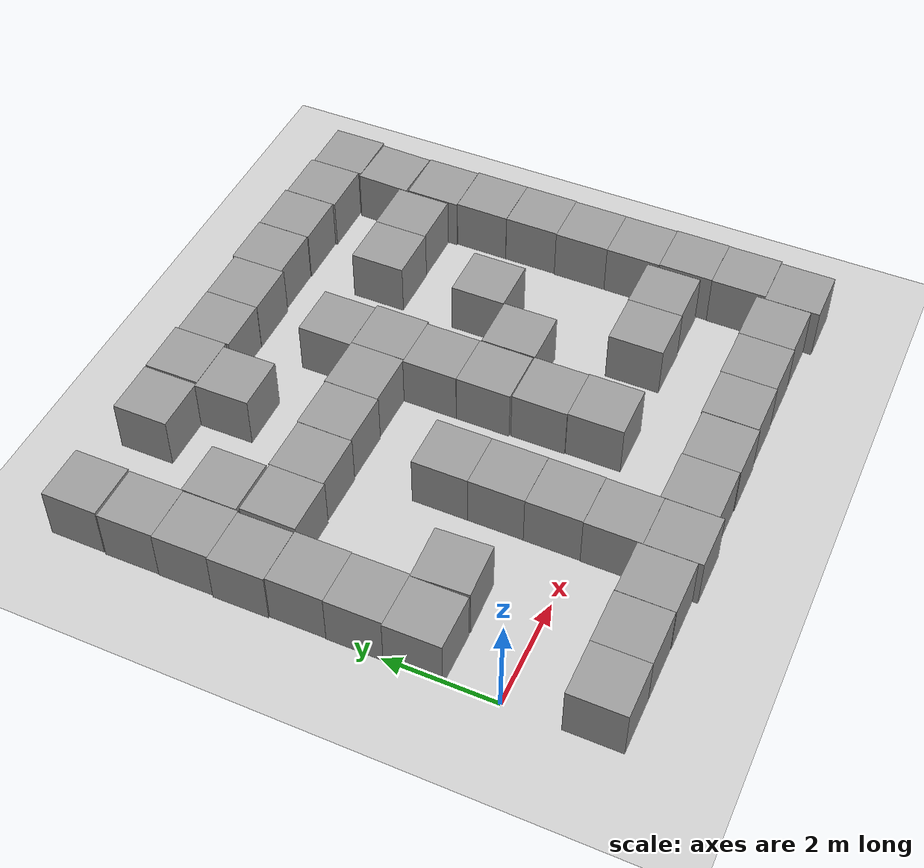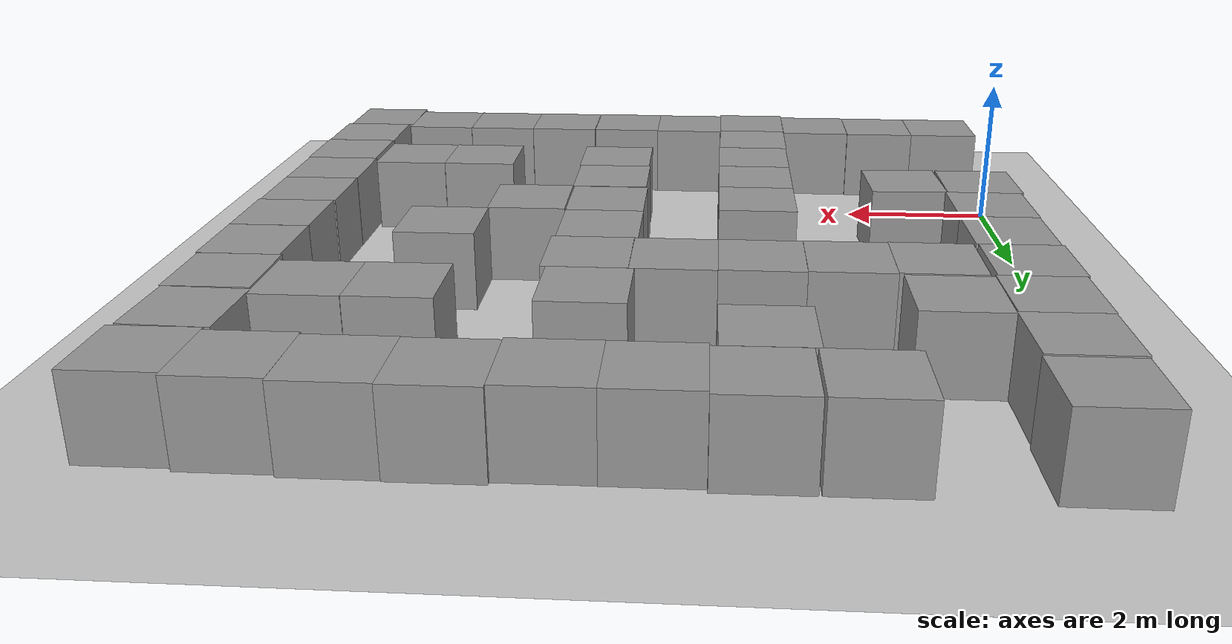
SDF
<sdf version="1.7">
 <world name="default">
  <light name="sun" type="directional">
   <pose>0 0 10 0 -0 0</pose>
   <diffuse>0.8 0.8 0.8 1</diffuse>
   <specular>0.2 0.2 0.2 1</specular>
   <attenuation>
    <range>1000</range>
    <constant>0.9</constant>
    <linear>0.01</linear>
    <quadratic>0.001</quadratic>
   </attenuation>
   <direction>-0.5 0.1 -0.9</direction>
   <spot><inner_angle>0</inner_angle><outer_angle>0</outer_angle><falloff>0</falloff></spot>
  </light>
  <model name="ground_plane">
   <static>1</static>
   <link name="link">
    <collision name="collision">
     <geometry><plane><normal>0 0 1</normal><size>100 100</size></plane></geometry>
     <surface><friction><ode><mu>100</mu><mu2>50</mu2></ode></friction></surface>
    </collision>
    <visual name="visual">
     <cast_shadows>0</cast_shadows>
     <geometry><plane><normal>0 0 1</normal><size>100 100</size></plane></geometry>
     <material>
      <script><uri>file://media/materials/scripts/gazebo.material</uri><name>Gazebo/Grey</name></script>
     </material>
    </visual>
   </link>
  </model>
  <gravity>0 0 -9.8</gravity>
  <magnetic_field>6e-06 2.3e-05 -4.2e-05</magnetic_field>
  <atmosphere type="adiabatic"/>
  <physics type="ode">
   <max_step_size>0.001</max_step_size>
   <real_time_factor>1</real_time_factor>
   <real_time_update_rate>1000</real_time_update_rate>
  </physics>
  <scene><ambient>0.4 0.4 0.4 1</ambient><background>0.7 0.7 0.7 1</background><shadows>1</shadows></scene>
  <audio><device>default</device></audio>
  <spherical_coordinates>
   <surface_model>EARTH_WGS84</surface_model>
   <latitude_deg>0</latitude_deg>
   <longitude_deg>0</longitude_deg>
   <elevation>0</elevation>
   <heading_deg>0</heading_deg>
  </spherical_coordinates>
  <model name="unit_box">
   <pose>0.443904 1.44466 0.5 0 -0 0.004043</pose>
   <link name="link">
    <inertial>
     <mass>1</mass>
     <inertia>
      <ixx>0.166667</ixx>
      <ixy>0</ixy>
      <ixz>0</ixz>
      <iyy>0.166667</iyy>
      <iyz>0</iyz>
      <izz>0.166667</izz>
     </inertia>
    </inertial>
    <collision name="collision"><geometry><box><size>1 1 1</size></box></geometry></collision>
    <visual name="visual">
     <geometry><box><size>1 1 1</size></box></geometry>
     <material>
      <script><name>Gazebo/Grey</name><uri>file://media/materials/scripts/gazebo.material</uri></script>
     </material>
    </visual>
   </link>
  </model>
  <model name="unit_box_0">
   <pose>0.474663 -1.49159 0.5 0 0 -0.000313</pose>
   <link name="link">
    <inertial>
     <mass>1</mass>
     <inertia>
      <ixx>0.166667</ixx>
      <ixy>0</ixy>
      <ixz>0</ixz>
      <iyy>0.166667</iyy>
      <iyz>0</iyz>
      <izz>0.166667</izz>
     </inertia>
    </inertial>
    <collision name="collision"><geometry><box><size>1 1 1</size></box></geometry></collision>
    <visual name="visual">
     <geometry><box><size>1 1 1</size></box></geometry>
     <material>
      <script><name>Gazebo/Grey</name><uri>file://media/materials/scripts/gazebo.material</uri></script>
     </material>
    </visual>
   </link>
  </model>
  <model name="unit_box_1">
   <pose>1.47472 -1.49217 0.5 0 0 -0.00041</pose>
   <link name="link">
    <inertial>
     <mass>1</mass>
     <inertia>
      <ixx>0.166667</ixx>
      <ixy>0</ixy>
      <ixz>0</ixz>
      <iyy>0.166667</iyy>
      <iyz>0</iyz>
      <izz>0.166667</izz>
     </inertia>
    </inertial>
    <collision name="collision"><geometry><box><size>1 1 1</size></box></geometry></collision>
    <visual name="visual">
     <geometry><box><size>1 1 1</size></box></geometry>
     <material>
      <script><name>Gazebo/Grey</name><uri>file://media/materials/scripts/gazebo.material</uri></script>
     </material>
    </visual>
   </link>
  </model>
  <model name="unit_box_2">
   <pose>2.47643 -1.50173 0.5 0 -0 -0.003888</pose>
   <link name="link">
    <inertial>
     <mass>1</mass>
     <inertia>
      <ixx>0.166667</ixx>
      <ixy>0</ixy>
      <ixz>0</ixz>
      <iyy>0.166667</iyy>
      <iyz>0</iyz>
      <izz>0.166667</izz>
     </inertia>
    </inertial>
    <collision name="collision"><geometry><box><size>1 1 1</size></box></geometry></collision>
    <visual name="visual">
     <geometry><box><size>1 1 1</size></box></geometry>
     <material>
      <script><name>Gazebo/Grey</name><uri>file://media/materials/scripts/gazebo.material</uri></script>
     </material>
    </visual>
   </link>
  </model>
  <model name="unit_box_3">
   <pose>3.47791 -1.59664 0.5 0 -0 -0.004404</pose>
   <link name="link">
    <inertial>
     <mass>1</mass>
     <inertia>
      <ixx>0.166667</ixx>
      <ixy>0</ixy>
      <ixz>0</ixz>
      <iyy>0.166667</iyy>
      <iyz>0</iyz>
      <izz>0.166667</izz>
     </inertia>
    </inertial>
    <collision name="collision"><geometry><box><size>1 1 1</size></box></geometry></collision>
    <visual name="visual">
     <geometry><box><size>1 1 1</size></box></geometry>
     <material>
      <script><name>Gazebo/Grey</name><uri>file://media/materials/scripts/gazebo.material</uri></script>
     </material>
    </visual>
   </link>
  </model>
  <model name="unit_box_4">
   <pose>4.47917 -1.52453 0.5 -0 -0 -0.006245</pose>
   <link name="link">
    <inertial>
     <mass>1</mass>
     <inertia>
      <ixx>0.166667</ixx>
      <ixy>0</ixy>
      <ixz>0</ixz>
      <iyy>0.166667</iyy>
      <iyz>0</iyz>
      <izz>0.166667</izz>
     </inertia>
    </inertial>
    <collision name="collision"><geometry><box><size>1 1 1</size></box></geometry></collision>
    <visual name="visual">
     <geometry><box><size>1 1 1</size></box></geometry>
     <material>
      <script><name>Gazebo/Grey</name><uri>file://media/materials/scripts/gazebo.material</uri></script>
     </material>
    </visual>
   </link>
  </model>
  <model name="unit_box_5">
   <pose>5.4791 -1.54081 0.5 0 0 -0.00624</pose>
   <link name="link">
    <inertial>
     <mass>1</mass>
     <inertia>
      <ixx>0.166667</ixx>
      <ixy>0</ixy>
      <ixz>0</ixz>
      <iyy>0.166667</iyy>
      <iyz>0</iyz>
      <izz>0.166667</izz>
     </inertia>
    </inertial>
    <collision name="collision"><geometry><box><size>1 1 1</size></box></geometry></collision>
    <visual name="visual">
     <geometry><box><size>1 1 1</size></box></geometry>
     <material>
      <script><name>Gazebo/Grey</name><uri>file://media/materials/scripts/gazebo.material</uri></script>
     </material>
    </visual>
   </link>
  </model>
  <model name="unit_box_6">
   <pose>6.48631 -1.52964 0.5 0 0 -0.008045</pose>
   <link name="link">
    <inertial>
     <mass>1</mass>
     <inertia>
      <ixx>0.166667</ixx>
      <ixy>0</ixy>
      <ixz>0</ixz>
      <iyy>0.166667</iyy>
      <iyz>0</iyz>
      <izz>0.166667</izz>
     </inertia>
    </inertial>
    <collision name="collision"><geometry><box><size>1 1 1</size></box></geometry></collision>
    <visual name="visual">
     <geometry><box><size>1 1 1</size></box></geometry>
     <material>
      <script><name>Gazebo/Grey</name><uri>file://media/materials/scripts/gazebo.material</uri></script>
     </material>
    </visual>
   </link>
  </model>
  <model name="unit_box_7">
   <pose>7.48636 -1.52834 0.5 0 -0 -0.008045</pose>
   <link name="link">
    <inertial>
     <mass>1</mass>
     <inertia>
      <ixx>0.166667</ixx>
      <ixy>0</ixy>
      <ixz>0</ixz>
      <iyy>0.166667</iyy>
      <iyz>0</iyz>
      <izz>0.166667</izz>
     </inertia>
    </inertial>
    <collision name="collision"><geometry><box><size>1 1 1</size></box></geometry></collision>
    <visual name="visual">
     <geometry><box><size>1 1 1</size></box></geometry>
     <material>
      <script><name>Gazebo/Grey</name><uri>file://media/materials/scripts/gazebo.material</uri></script>
     </material>
    </visual>
   </link>
  </model>
  <model name="unit_box_8">
   <pose>8.48644 -1.52701 0.5 0 -0 -0.008068</pose>
   <link name="link">
    <inertial>
     <mass>1</mass>
     <inertia>
      <ixx>0.166667</ixx>
      <ixy>0</ixy>
      <ixz>0</ixz>
      <iyy>0.166667</iyy>
      <iyz>0</iyz>
      <izz>0.166667</izz>
     </inertia>
    </inertial>
    <collision name="collision"><geometry><box><size>1 1 1</size></box></geometry></collision>
    <visual name="visual">
     <geometry><box><size>1 1 1</size></box></geometry>
     <material>
      <script><name>Gazebo/Grey</name><uri>file://media/materials/scripts/gazebo.material</uri></script>
     </material>
    </visual>
   </link>
  </model>
  <model name="unit_box_9">
   <pose>9.48855 -1.68285 0.5 0 0 -0.001393</pose>
   <link name="link">
    <inertial>
     <mass>1</mass>
     <inertia>
      <ixx>0.166667</ixx>
      <ixy>0</ixy>
      <ixz>0</ixz>
      <iyy>0.166667</iyy>
      <iyz>0</iyz>
      <izz>0.166667</izz>
     </inertia>
    </inertial>
    <collision name="collision"><geometry><box><size>1 1 1</size></box></geometry></collision>
    <visual name="visual">
     <geometry><box><size>1 1 1</size></box></geometry>
     <material>
      <script><name>Gazebo/Grey</name><uri>file://media/materials/scripts/gazebo.material</uri></script>
     </material>
    </visual>
   </link>
  </model>
  <model name="unit_box_10">
   <pose>1.46379 1.4656 0.5 0 -0 0.039116</pose>
   <link name="link">
    <inertial>
     <mass>1</mass>
     <inertia>
      <ixx>0.166667</ixx>
      <ixy>0</ixy>
      <ixz>0</ixz>
      <iyy>0.166667</iyy>
      <iyz>0</iyz>
      <izz>0.166667</izz>
     </inertia>
    </inertial>
    <collision name="collision"><geometry><box><size>1 1 1</size></box></geometry></collision>
    <visual name="visual">
     <geometry><box><size>1 1 1</size></box></geometry>
     <material>
      <script><name>Gazebo/Grey</name><uri>file://media/materials/scripts/gazebo.material</uri></script>
     </material>
    </visual>
   </link>
  </model>
  <model name="unit_box_11">
   <pose>3.48384 -0.596114 0.5 0 -0 -0.004137</pose>
   <link name="link">
    <inertial>
     <mass>1</mass>
     <inertia>
      <ixx>0.166667</ixx>
      <ixy>0</ixy>
      <ixz>0</ixz>
      <iyy>0.166667</iyy>
      <iyz>0</iyz>
      <izz>0.166667</izz>
     </inertia>
    </inertial>
    <collision name="collision"><geometry><box><size>1 1 1</size></box></geometry></collision>
    <visual name="visual">
     <geometry><box><size>1 1 1</size></box></geometry>
     <material>
      <script><name>Gazebo/Grey</name><uri>file://media/materials/scripts/gazebo.material</uri></script>
     </material>
    </visual>
   </link>
  </model>
  <model name="unit_box_12">
   <pose>9.54129 -0.681834 0.5 0 -0 0.000345</pose>
   <link name="link">
    <inertial>
     <mass>1</mass>
     <inertia>
      <ixx>0.166667</ixx>
      <ixy>0</ixy>
      <ixz>0</ixz>
      <iyy>0.166667</iyy>
      <iyz>0</iyz>
      <izz>0.166667</izz>
     </inertia>
    </inertial>
    <collision name="collision"><geometry><box><size>1 1 1</size></box></geometry></collision>
    <visual name="visual">
     <geometry><box><size>1 1 1</size></box></geometry>
     <material>
      <script><name>Gazebo/Grey</name><uri>file://media/materials/scripts/gazebo.material</uri></script>
     </material>
    </visual>
   </link>
  </model>
  <model name="unit_box_13">
   <pose>9.55218 0.31835 0.5 0 -0 0.000614</pose>
   <link name="link">
    <inertial>
     <mass>1</mass>
     <inertia>
      <ixx>0.166667</ixx>
      <ixy>0</ixy>
      <ixz>0</ixz>
      <iyy>0.166667</iyy>
      <iyz>0</iyz>
      <izz>0.166667</izz>
     </inertia>
    </inertial>
    <collision name="collision"><geometry><box><size>1 1 1</size></box></geometry></collision>
    <visual name="visual">
     <geometry><box><size>1 1 1</size></box></geometry>
     <material>
      <script><name>Gazebo/Grey</name><uri>file://media/materials/scripts/gazebo.material</uri></script>
     </material>
    </visual>
   </link>
  </model>
  <model name="unit_box_14">
   <pose>9.53408 1.31835 0.5 0 -0 0.000598</pose>
   <link name="link">
    <inertial>
     <mass>1</mass>
     <inertia>
      <ixx>0.166667</ixx>
      <ixy>0</ixy>
      <ixz>0</ixz>
      <iyy>0.166667</iyy>
      <iyz>0</iyz>
      <izz>0.166667</izz>
     </inertia>
    </inertial>
    <collision name="collision"><geometry><box><size>1 1 1</size></box></geometry></collision>
    <visual name="visual">
     <geometry><box><size>1 1 1</size></box></geometry>
     <material>
      <script><name>Gazebo/Grey</name><uri>file://media/materials/scripts/gazebo.material</uri></script>
     </material>
    </visual>
   </link>
  </model>
  <model name="unit_box_15">
   <pose>9.53714 2.31839 0.5 0 -0 0.000534</pose>
   <link name="link">
    <inertial>
     <mass>1</mass>
     <inertia>
      <ixx>0.166667</ixx>
      <ixy>0</ixy>
      <ixz>0</ixz>
      <iyy>0.166667</iyy>
      <iyz>0</iyz>
      <izz>0.166667</izz>
     </inertia>
    </inertial>
    <collision name="collision"><geometry><box><size>1 1 1</size></box></geometry></collision>
    <visual name="visual">
     <geometry><box><size>1 1 1</size></box></geometry>
     <material>
      <script><name>Gazebo/Grey</name><uri>file://media/materials/scripts/gazebo.material</uri></script>
     </material>
    </visual>
   </link>
  </model>
  <model name="unit_box_16">
   <pose>3.49933 0.404448 0.5 0 0 -0.002953</pose>
   <link name="link">
    <inertial>
     <mass>1</mass>
     <inertia>
      <ixx>0.166667</ixx>
      <ixy>0</ixy>
      <ixz>0</ixz>
      <iyy>0.166667</iyy>
      <iyz>0</iyz>
      <izz>0.166667</izz>
     </inertia>
    </inertial>
    <collision name="collision"><geometry><box><size>1 1 1</size></box></geometry></collision>
    <visual name="visual">
     <geometry><box><size>1 1 1</size></box></geometry>
     <material>
      <script><name>Gazebo/Grey</name><uri>file://media/materials/scripts/gazebo.material</uri></script>
     </material>
    </visual>
   </link>
  </model>
  <model name="unit_box_17">
   <pose>3.50516 1.4052 0.5 0 0 -0.001457</pose>
   <link name="link">
    <inertial>
     <mass>1</mass>
     <inertia>
      <ixx>0.166667</ixx>
      <ixy>0</ixy>
      <ixz>0</ixz>
      <iyy>0.166667</iyy>
      <iyz>0</iyz>
      <izz>0.166667</izz>
     </inertia>
    </inertial>
    <collision name="collision"><geometry><box><size>1 1 1</size></box></geometry></collision>
    <visual name="visual">
     <geometry><box><size>1 1 1</size></box></geometry>
     <material>
      <script><name>Gazebo/Grey</name><uri>file://media/materials/scripts/gazebo.material</uri></script>
     </material>
    </visual>
   </link>
  </model>
  <model name="unit_box_18">
   <pose>0.471958 2.44481 0.5 0 -0 0.00407</pose>
   <link name="link">
    <inertial>
     <mass>1</mass>
     <inertia>
      <ixx>0.166667</ixx>
      <ixy>0</ixy>
      <ixz>0</ixz>
      <iyy>0.166667</iyy>
      <iyz>0</iyz>
      <izz>0.166667</izz>
     </inertia>
    </inertial>
    <collision name="collision"><geometry><box><size>1 1 1</size></box></geometry></collision>
    <visual name="visual">
     <geometry><box><size>1 1 1</size></box></geometry>
     <material>
      <script><name>Gazebo/Grey</name><uri>file://media/materials/scripts/gazebo.material</uri></script>
     </material>
    </visual>
   </link>
  </model>
  <model name="unit_box_19">
   <pose>0.4783 3.44491 0.5 0 -0 0.004124</pose>
   <link name="link">
    <inertial>
     <mass>1</mass>
     <inertia>
      <ixx>0.166667</ixx>
      <ixy>0</ixy>
      <ixz>0</ixz>
      <iyy>0.166667</iyy>
      <iyz>0</iyz>
      <izz>0.166667</izz>
     </inertia>
    </inertial>
    <collision name="collision"><geometry><box><size>1 1 1</size></box></geometry></collision>
    <visual name="visual">
     <geometry><box><size>1 1 1</size></box></geometry>
     <material>
      <script><name>Gazebo/Grey</name><uri>file://media/materials/scripts/gazebo.material</uri></script>
     </material>
    </visual>
   </link>
  </model>
  <model name="unit_box_20">
   <pose>0.447628 4.44644 0.5 0 -0 0.007526</pose>
   <link name="link">
    <inertial>
     <mass>1</mass>
     <inertia>
      <ixx>0.166667</ixx>
      <ixy>0</ixy>
      <ixz>0</ixz>
      <iyy>0.166667</iyy>
      <iyz>0</iyz>
      <izz>0.166667</izz>
     </inertia>
    </inertial>
    <collision name="collision"><geometry><box><size>1 1 1</size></box></geometry></collision>
    <visual name="visual">
     <geometry><box><size>1 1 1</size></box></geometry>
     <material>
      <script><name>Gazebo/Grey</name><uri>file://media/materials/scripts/gazebo.material</uri></script>
     </material>
    </visual>
   </link>
  </model>
  <model name="unit_box_21">
   <pose>0.466162 5.44676 0.5 0 -0 0.007802</pose>
   <link name="link">
    <inertial>
     <mass>1</mass>
     <inertia>
      <ixx>0.166667</ixx>
      <ixy>0</ixy>
      <ixz>0</ixz>
      <iyy>0.166667</iyy>
      <iyz>0</iyz>
      <izz>0.166667</izz>
     </inertia>
    </inertial>
    <collision name="collision"><geometry><box><size>1 1 1</size></box></geometry></collision>
    <visual name="visual">
     <geometry><box><size>1 1 1</size></box></geometry>
     <material>
      <script><name>Gazebo/Grey</name><uri>file://media/materials/scripts/gazebo.material</uri></script>
     </material>
    </visual>
   </link>
  </model>
  <model name="unit_box_22">
   <pose>0.470171 6.447 0.5 0 -0 0.00784</pose>
   <link name="link">
    <inertial>
     <mass>1</mass>
     <inertia>
      <ixx>0.166667</ixx>
      <ixy>0</ixy>
      <ixz>0</ixz>
      <iyy>0.166667</iyy>
      <iyz>0</iyz>
      <izz>0.166667</izz>
     </inertia>
    </inertial>
    <collision name="collision"><geometry><box><size>1 1 1</size></box></geometry></collision>
    <visual name="visual">
     <geometry><box><size>1 1 1</size></box></geometry>
     <material>
      <script><name>Gazebo/Grey</name><uri>file://media/materials/scripts/gazebo.material</uri></script>
     </material>
    </visual>
   </link>
  </model>
  <model name="unit_box_23">
   <pose>9.55411 3.31841 0.5 0 -0 0.000525</pose>
   <link name="link">
    <inertial>
     <mass>1</mass>
     <inertia>
      <ixx>0.166667</ixx>
      <ixy>0</ixy>
      <ixz>0</ixz>
      <iyy>0.166667</iyy>
      <iyz>0</iyz>
      <izz>0.166667</izz>
     </inertia>
    </inertial>
    <collision name="collision"><geometry><box><size>1 1 1</size></box></geometry></collision>
    <visual name="visual">
     <geometry><box><size>1 1 1</size></box></geometry>
     <material>
      <script><name>Gazebo/Grey</name><uri>file://media/materials/scripts/gazebo.material</uri></script>
     </material>
    </visual>
   </link>
  </model>
  <model name="unit_box_24">
   <pose>9.55504 4.32071 0.5 0 0 -0.004068</pose>
   <link name="link">
    <inertial>
     <mass>1</mass>
     <inertia>
      <ixx>0.166667</ixx>
      <ixy>0</ixy>
      <ixz>0</ixz>
      <iyy>0.166667</iyy>
      <iyz>0</iyz>
      <izz>0.166667</izz>
     </inertia>
    </inertial>
    <collision name="collision"><geometry><box><size>1 1 1</size></box></geometry></collision>
    <visual name="visual">
     <geometry><box><size>1 1 1</size></box></geometry>
     <material>
      <script><name>Gazebo/Grey</name><uri>file://media/materials/scripts/gazebo.material</uri></script>
     </material>
    </visual>
   </link>
  </model>
  <model name="unit_box_26">
   <pose>9.52213 6.34288 0.5 0 -0 -0.030222</pose>
   <link name="link">
    <inertial>
     <mass>1</mass>
     <inertia>
      <ixx>0.166667</ixx>
      <ixy>0</ixy>
      <ixz>0</ixz>
      <iyy>0.166667</iyy>
      <iyz>0</iyz>
      <izz>0.166667</izz>
     </inertia>
    </inertial>
    <collision name="collision"><geometry><box><size>1 1 1</size></box></geometry></collision>
    <visual name="visual">
     <geometry><box><size>1 1 1</size></box></geometry>
     <material>
      <script><name>Gazebo/Grey</name><uri>file://media/materials/scripts/gazebo.material</uri></script>
     </material>
    </visual>
   </link>
  </model>
  <model name="unit_box_27">
   <pose>9.59857 7.3581 0.499995 1e-05 0 0.001738</pose>
   <link name="link">
    <inertial>
     <mass>1</mass>
     <inertia>
      <ixx>0.166667</ixx>
      <ixy>0</ixy>
      <ixz>0</ixz>
      <iyy>0.166667</iyy>
      <iyz>0</iyz>
      <izz>0.166667</izz>
     </inertia>
    </inertial>
    <collision name="collision"><geometry><box><size>1 1 1</size></box></geometry></collision>
    <visual name="visual">
     <geometry><box><size>1 1 1</size></box></geometry>
     <material>
      <script><name>Gazebo/Grey</name><uri>file://media/materials/scripts/gazebo.material</uri></script>
     </material>
    </visual>
   </link>
  </model>
  <model name="unit_box_31">
   <pose>6.59731 7.45589 0.5 0 -0 0.003855</pose>
   <link name="link">
    <inertial>
     <mass>1</mass>
     <inertia>
      <ixx>0.166667</ixx>
      <ixy>0</ixy>
      <ixz>0</ixz>
      <iyy>0.166667</iyy>
      <iyz>0</iyz>
      <izz>0.166667</izz>
     </inertia>
    </inertial>
    <collision name="collision"><geometry><box><size>1 1 1</size></box></geometry></collision>
    <visual name="visual">
     <geometry><box><size>1 1 1</size></box></geometry>
     <material>
      <script><name>Gazebo/Grey</name><uri>file://media/materials/scripts/gazebo.material</uri></script>
     </material>
    </visual>
   </link>
  </model>
  <model name="unit_box_32">
   <pose>5.59727 7.40773 0.5 0 -0 0.004315</pose>
   <link name="link">
    <inertial>
     <mass>1</mass>
     <inertia>
      <ixx>0.166667</ixx>
      <ixy>0</ixy>
      <ixz>0</ixz>
      <iyy>0.166667</iyy>
      <iyz>0</iyz>
      <izz>0.166667</izz>
     </inertia>
    </inertial>
    <collision name="collision"><geometry><box><size>1 1 1</size></box></geometry></collision>
    <visual name="visual">
     <geometry><box><size>1 1 1</size></box></geometry>
     <material>
      <script><name>Gazebo/Grey</name><uri>file://media/materials/scripts/gazebo.material</uri></script>
     </material>
    </visual>
   </link>
  </model>
  <model name="unit_box_33">
   <pose>4.59726 7.40817 0.5 0 -0 0.004315</pose>
   <link name="link">
    <inertial>
     <mass>1</mass>
     <inertia>
      <ixx>0.166667</ixx>
      <ixy>0</ixy>
      <ixz>0</ixz>
      <iyy>0.166667</iyy>
      <iyz>0</iyz>
      <izz>0.166667</izz>
     </inertia>
    </inertial>
    <collision name="collision"><geometry><box><size>1 1 1</size></box></geometry></collision>
    <visual name="visual">
     <geometry><box><size>1 1 1</size></box></geometry>
     <material>
      <script><name>Gazebo/Grey</name><uri>file://media/materials/scripts/gazebo.material</uri></script>
     </material>
    </visual>
   </link>
  </model>
  <model name="unit_box_34">
   <pose>3.5962 7.45518 0.5 0 -0 0.005982</pose>
   <link name="link">
    <inertial>
     <mass>1</mass>
     <inertia>
      <ixx>0.166667</ixx>
      <ixy>0</ixy>
      <ixz>0</ixz>
      <iyy>0.166667</iyy>
      <iyz>0</iyz>
      <izz>0.166667</izz>
     </inertia>
    </inertial>
    <collision name="collision"><geometry><box><size>1 1 1</size></box></geometry></collision>
    <visual name="visual">
     <geometry><box><size>1 1 1</size></box></geometry>
     <material>
      <script><name>Gazebo/Grey</name><uri>file://media/materials/scripts/gazebo.material</uri></script>
     </material>
    </visual>
   </link>
  </model>
  <model name="unit_box_38">
   <pose>3.50665 2.40521 0.5 0 0 -0.001452</pose>
   <link name="link">
    <inertial>
     <mass>1</mass>
     <inertia>
      <ixx>0.166667</ixx>
      <ixy>0</ixy>
      <ixz>0</ixz>
      <iyy>0.166667</iyy>
      <iyz>0</iyz>
      <izz>0.166667</izz>
     </inertia>
    </inertial>
    <collision name="collision"><geometry><box><size>1 1 1</size></box></geometry></collision>
    <visual name="visual">
     <geometry><box><size>1 1 1</size></box></geometry>
     <material>
      <script><name>Gazebo/Grey</name><uri>file://media/materials/scripts/gazebo.material</uri></script>
     </material>
    </visual>
   </link>
  </model>
  <model name="unit_box_42">
   <pose>1.51493 4.46199 0.5 0 0 -0.004961</pose>
   <link name="link">
    <inertial>
     <mass>1</mass>
     <inertia>
      <ixx>0.166667</ixx>
      <ixy>0</ixy>
      <ixz>0</ixz>
      <iyy>0.166667</iyy>
      <iyz>0</iyz>
      <izz>0.166667</izz>
     </inertia>
    </inertial>
    <collision name="collision"><geometry><box><size>1 1 1</size></box></geometry></collision>
    <visual name="visual">
     <geometry><box><size>1 1 1</size></box></geometry>
     <material>
      <script><name>Gazebo/Grey</name><uri>file://media/materials/scripts/gazebo.material</uri></script>
     </material>
    </visual>
   </link>
  </model>
  <model name="unit_box_43">
   <pose>2.51523 4.47914 0.5 0 0 -0.005021</pose>
   <link name="link">
    <inertial>
     <mass>1</mass>
     <inertia>
      <ixx>0.166667</ixx>
      <ixy>0</ixy>
      <ixz>0</ixz>
      <iyy>0.166667</iyy>
      <iyz>0</iyz>
      <izz>0.166667</izz>
     </inertia>
    </inertial>
    <collision name="collision"><geometry><box><size>1 1 1</size></box></geometry></collision>
    <visual name="visual">
     <geometry><box><size>1 1 1</size></box></geometry>
     <material>
      <script><name>Gazebo/Grey</name><uri>file://media/materials/scripts/gazebo.material</uri></script>
     </material>
    </visual>
   </link>
  </model>
  <model name="unit_box_44">
   <pose>3.51656 4.49288 0.5 -0 -0 -0.006978</pose>
   <link name="link">
    <inertial>
     <mass>1</mass>
     <inertia>
      <ixx>0.166667</ixx>
      <ixy>0</ixy>
      <ixz>0</ixz>
      <iyy>0.166667</iyy>
      <iyz>0</iyz>
      <izz>0.166667</izz>
     </inertia>
    </inertial>
    <collision name="collision"><geometry><box><size>1 1 1</size></box></geometry></collision>
    <visual name="visual">
     <geometry><box><size>1 1 1</size></box></geometry>
     <material>
      <script><name>Gazebo/Grey</name><uri>file://media/materials/scripts/gazebo.material</uri></script>
     </material>
    </visual>
   </link>
  </model>
  <model name="unit_box_45">
   <pose>4.51696 4.50205 0.5 -0 -0 -0.007009</pose>
   <link name="link">
    <inertial>
     <mass>1</mass>
     <inertia>
      <ixx>0.166667</ixx>
      <ixy>0</ixy>
      <ixz>0</ixz>
      <iyy>0.166667</iyy>
      <iyz>0</iyz>
      <izz>0.166667</izz>
     </inertia>
    </inertial>
    <collision name="collision"><geometry><box><size>1 1 1</size></box></geometry></collision>
    <visual name="visual">
     <geometry><box><size>1 1 1</size></box></geometry>
     <material>
      <script><name>Gazebo/Grey</name><uri>file://media/materials/scripts/gazebo.material</uri></script>
     </material>
    </visual>
   </link>
  </model>
  <model name="unit_box_46">
   <pose>5.47044 3.49597 0.5 0 -0 -0.003365</pose>
   <link name="link">
    <inertial>
     <mass>1</mass>
     <inertia>
      <ixx>0.166667</ixx>
      <ixy>0</ixy>
      <ixz>0</ixz>
      <iyy>0.166667</iyy>
      <iyz>0</iyz>
      <izz>0.166667</izz>
     </inertia>
    </inertial>
    <collision name="collision"><geometry><box><size>1 1 1</size></box></geometry></collision>
    <visual name="visual">
     <geometry><box><size>1 1 1</size></box></geometry>
     <material>
      <script><name>Gazebo/Grey</name><uri>file://media/materials/scripts/gazebo.material</uri></script>
     </material>
    </visual>
   </link>
  </model>
  <model name="unit_box_47">
   <pose>5.52005 4.49585 0.5 0 0 -0.003407</pose>
   <link name="link">
    <inertial>
     <mass>1</mass>
     <inertia>
      <ixx>0.166667</ixx>
      <ixy>0</ixy>
      <ixz>0</ixz>
      <iyy>0.166667</iyy>
      <iyz>0</iyz>
      <izz>0.166667</izz>
     </inertia>
    </inertial>
    <collision name="collision"><geometry><box><size>1 1 1</size></box></geometry></collision>
    <visual name="visual">
     <geometry><box><size>1 1 1</size></box></geometry>
     <material>
      <script><name>Gazebo/Grey</name><uri>file://media/materials/scripts/gazebo.material</uri></script>
     </material>
    </visual>
   </link>
  </model>
  <model name="unit_box_49">
   <pose>7.46915 3.483 0.5 -0 -0 -6.6e-05</pose>
   <link name="link">
    <inertial>
     <mass>1</mass>
     <inertia>
      <ixx>0.166667</ixx>
      <ixy>0</ixy>
      <ixz>0</ixz>
      <iyy>0.166667</iyy>
      <iyz>0</iyz>
      <izz>0.166667</izz>
     </inertia>
    </inertial>
    <collision name="collision"><geometry><box><size>1 1 1</size></box></geometry></collision>
    <visual name="visual">
     <geometry><box><size>1 1 1</size></box></geometry>
     <material>
      <script><name>Gazebo/Grey</name><uri>file://media/materials/scripts/gazebo.material</uri></script>
     </material>
    </visual>
   </link>
  </model>
  <model name="unit_box_40">
   <pose>5.50939 0.47916 0.5 0 -0 0.001219</pose>
   <link name="link">
    <inertial>
     <mass>1</mass>
     <inertia>
      <ixx>0.166667</ixx>
      <ixy>0</ixy>
      <ixz>0</ixz>
      <iyy>0.166667</iyy>
      <iyz>0</iyz>
      <izz>0.166667</izz>
     </inertia>
    </inertial>
    <collision name="collision"><geometry><box><size>1 1 1</size></box></geometry></collision>
    <visual name="visual">
     <geometry><box><size>1 1 1</size></box></geometry>
     <material>
      <script><name>Gazebo/Grey</name><uri>file://media/materials/scripts/gazebo.material</uri></script>
     </material>
    </visual>
   </link>
  </model>
  <model name="unit_box_39">
   <pose>5.49121 1.47914 0.5 0 -0 0.00122</pose>
   <link name="link">
    <inertial>
     <mass>1</mass>
     <inertia>
      <ixx>0.166667</ixx>
      <ixy>0</ixy>
      <ixz>0</ixz>
      <iyy>0.166667</iyy>
      <iyz>0</iyz>
      <izz>0.166667</izz>
     </inertia>
    </inertial>
    <collision name="collision"><geometry><box><size>1 1 1</size></box></geometry></collision>
    <visual name="visual">
     <geometry><box><size>1 1 1</size></box></geometry>
     <material>
      <script><name>Gazebo/Grey</name><uri>file://media/materials/scripts/gazebo.material</uri></script>
     </material>
    </visual>
   </link>
  </model>
  <model name="unit_box_41">
   <pose>5.47107 2.49594 0.5 0 0 -0.00337</pose>
   <link name="link">
    <inertial>
     <mass>1</mass>
     <inertia>
      <ixx>0.166667</ixx>
      <ixy>0</ixy>
      <ixz>0</ixz>
      <iyy>0.166667</iyy>
      <iyz>0</iyz>
      <izz>0.166667</izz>
     </inertia>
    </inertial>
    <collision name="collision"><geometry><box><size>1 1 1</size></box></geometry></collision>
    <visual name="visual">
     <geometry><box><size>1 1 1</size></box></geometry>
     <material>
      <script><name>Gazebo/Grey</name><uri>file://media/materials/scripts/gazebo.material</uri></script>
     </material>
    </visual>
   </link>
  </model>
  <model name="unit_box_50">
   <pose>7.48029 0.504693 0.5 0 -0 3e-06</pose>
   <link name="link">
    <inertial>
     <mass>1</mass>
     <inertia>
      <ixx>0.166667</ixx>
      <ixy>0</ixy>
      <ixz>0</ixz>
      <iyy>0.166667</iyy>
      <iyz>0</iyz>
      <izz>0.166667</izz>
     </inertia>
    </inertial>
    <collision name="collision"><geometry><box><size>1 1 1</size></box></geometry></collision>
    <visual name="visual">
     <geometry><box><size>1 1 1</size></box></geometry>
     <material>
      <script><name>Gazebo/Grey</name><uri>file://media/materials/scripts/gazebo.material</uri></script>
     </material>
    </visual>
   </link>
  </model>
  <model name="unit_box_51">
   <pose>8.48029 0.514063 0.5 0 -0 0</pose>
   <link name="link">
    <inertial>
     <mass>1</mass>
     <inertia>
      <ixx>0.166667</ixx>
      <ixy>0</ixy>
      <ixz>0</ixz>
      <iyy>0.166667</iyy>
      <iyz>0</iyz>
      <izz>0.166667</izz>
     </inertia>
    </inertial>
    <collision name="collision"><geometry><box><size>1 1 1</size></box></geometry></collision>
    <visual name="visual">
     <geometry><box><size>1 1 1</size></box></geometry>
     <material>
      <script><name>Gazebo/Grey</name><uri>file://media/materials/scripts/gazebo.material</uri></script>
     </material>
    </visual>
   </link>
  </model>
  <model name="unit_box_48">
   <pose>6.48943 2.47288 0.5 0 -0 0.002388</pose>
   <link name="link">
    <inertial>
     <mass>1</mass>
     <inertia>
      <ixx>0.166667</ixx>
      <ixy>0</ixy>
      <ixz>0</ixz>
      <iyy>0.166667</iyy>
      <iyz>0</iyz>
      <izz>0.166667</izz>
     </inertia>
    </inertial>
    <collision name="collision"><geometry><box><size>1 1 1</size></box></geometry></collision>
    <visual name="visual">
     <geometry><box><size>1 1 1</size></box></geometry>
     <material>
      <script><name>Gazebo/Grey</name><uri>file://media/materials/scripts/gazebo.material</uri></script>
     </material>
    </visual>
   </link>
  </model>
  <model name="unit_box_25">
   <pose>9.53055 5.32227 0.5 -0 -0 -0.001001</pose>
   <link name="link">
    <inertial>
     <mass>1</mass>
     <inertia>
      <ixx>0.166667</ixx>
      <ixy>0</ixy>
      <ixz>0</ixz>
      <iyy>0.166667</iyy>
      <iyz>0</iyz>
      <izz>0.166667</izz>
     </inertia>
    </inertial>
    <collision name="collision"><geometry><box><size>1 1 1</size></box></geometry></collision>
    <visual name="visual">
     <geometry><box><size>1 1 1</size></box></geometry>
     <material>
      <script><name>Gazebo/Grey</name><uri>file://media/materials/scripts/gazebo.material</uri></script>
     </material>
    </visual>
   </link>
  </model>
  <model name="unit_box_28">
   <pose>8.50229 5.4947 0.5 0 0 -0.000227</pose>
   <link name="link">
    <inertial>
     <mass>1</mass>
     <inertia>
      <ixx>0.166667</ixx>
      <ixy>0</ixy>
      <ixz>0</ixz>
      <iyy>0.166667</iyy>
      <iyz>0</iyz>
      <izz>0.166667</izz>
     </inertia>
    </inertial>
    <collision name="collision"><geometry><box><size>1 1 1</size></box></geometry></collision>
    <visual name="visual">
     <geometry><box><size>1 1 1</size></box></geometry>
     <material>
      <script><name>Gazebo/Grey</name><uri>file://media/materials/scripts/gazebo.material</uri></script>
     </material>
    </visual>
   </link>
  </model>
  <model name="unit_box_52">
   <pose>7.50228 5.48569 0.5 0 0 -0.000224</pose>
   <link name="link">
    <inertial>
     <mass>1</mass>
     <inertia>
      <ixx>0.166667</ixx>
      <ixy>0</ixy>
      <ixz>0</ixz>
      <iyy>0.166667</iyy>
      <iyz>0</iyz>
      <izz>0.166667</izz>
     </inertia>
    </inertial>
    <collision name="collision"><geometry><box><size>1 1 1</size></box></geometry></collision>
    <visual name="visual">
     <geometry><box><size>1 1 1</size></box></geometry>
     <material>
      <script><name>Gazebo/Grey</name><uri>file://media/materials/scripts/gazebo.material</uri></script>
     </material>
    </visual>
   </link>
  </model>
  <model name="unit_box_29">
   <pose>8.59847 7.40918 0.499995 0 1e-05 0.001746</pose>
   <link name="link">
    <inertial>
     <mass>1</mass>
     <inertia>
      <ixx>0.166667</ixx>
      <ixy>0</ixy>
      <ixz>0</ixz>
      <iyy>0.166667</iyy>
      <iyz>0</iyz>
      <izz>0.166667</izz>
     </inertia>
    </inertial>
    <collision name="collision"><geometry><box><size>1 1 1</size></box></geometry></collision>
    <visual name="visual">
     <geometry><box><size>1 1 1</size></box></geometry>
     <material>
      <script><name>Gazebo/Grey</name><uri>file://media/materials/scripts/gazebo.material</uri></script>
     </material>
    </visual>
   </link>
  </model>
  <model name="unit_box_30">
   <pose>7.59791 7.44502 0.499995 -0 -1e-05 0.002713</pose>
   <link name="link">
    <inertial>
     <mass>1</mass>
     <inertia>
      <ixx>0.166667</ixx>
      <ixy>0</ixy>
      <ixz>0</ixz>
      <iyy>0.166667</iyy>
      <iyz>0</iyz>
      <izz>0.166667</izz>
     </inertia>
    </inertial>
    <collision name="collision"><geometry><box><size>1 1 1</size></box></geometry></collision>
    <visual name="visual">
     <geometry><box><size>1 1 1</size></box></geometry>
     <material>
      <script><name>Gazebo/Grey</name><uri>file://media/materials/scripts/gazebo.material</uri></script>
     </material>
    </visual>
   </link>
  </model>
  <model name="unit_box_53">
   <pose>5.4568 5.49691 0.5 0 0 -0.004299</pose>
   <link name="link">
    <inertial>
     <mass>1</mass>
     <inertia>
      <ixx>0.166667</ixx>
      <ixy>0</ixy>
      <ixz>0</ixz>
      <iyy>0.166667</iyy>
      <iyz>0</iyz>
      <izz>0.166667</izz>
     </inertia>
    </inertial>
    <collision name="collision"><geometry><box><size>1 1 1</size></box></geometry></collision>
    <visual name="visual">
     <geometry><box><size>1 1 1</size></box></geometry>
     <material>
      <script><name>Gazebo/Grey</name><uri>file://media/materials/scripts/gazebo.material</uri></script>
     </material>
    </visual>
   </link>
  </model>
  <model name="unit_box_54">
   <pose>3.52257 6.45269 0.5 0 -0 0.008489</pose>
   <link name="link">
    <inertial>
     <mass>1</mass>
     <inertia>
      <ixx>0.166667</ixx>
      <ixy>0</ixy>
      <ixz>0</ixz>
      <iyy>0.166667</iyy>
      <iyz>0</iyz>
      <izz>0.166667</izz>
     </inertia>
    </inertial>
    <collision name="collision"><geometry><box><size>1 1 1</size></box></geometry></collision>
    <visual name="visual">
     <geometry><box><size>1 1 1</size></box></geometry>
     <material>
      <script><name>Gazebo/Grey</name><uri>file://media/materials/scripts/gazebo.material</uri></script>
     </material>
    </visual>
   </link>
  </model>
  <model name="unit_box_55">
   <pose>1.47616 5.49978 0.5 0 -0 0</pose>
   <link name="link">
    <inertial>
     <mass>1</mass>
     <inertia>
      <ixx>0.166667</ixx>
      <ixy>0</ixy>
      <ixz>0</ixz>
      <iyy>0.166667</iyy>
      <iyz>0</iyz>
      <izz>0.166667</izz>
     </inertia>
    </inertial>
    <collision name="collision"><geometry><box><size>1 1 1</size></box></geometry></collision>
    <visual name="visual">
     <geometry><box><size>1 1 1</size></box></geometry>
     <material>
      <script><name>Gazebo/Grey</name><uri>file://media/materials/scripts/gazebo.material</uri></script>
     </material>
    </visual>
   </link>
  </model>
  <model name="unit_box_36">
   <pose>0.490025 7.48368 0.5 0 -0 0</pose>
   <link name="link">
    <inertial>
     <mass>1</mass>
     <inertia>
      <ixx>0.166667</ixx>
      <ixy>0</ixy>
      <ixz>0</ixz>
      <iyy>0.166667</iyy>
      <iyz>0</iyz>
      <izz>0.166667</izz>
     </inertia>
    </inertial>
    <collision name="collision"><geometry><box><size>1 1 1</size></box></geometry></collision>
    <visual name="visual">
     <geometry><box><size>1 1 1</size></box></geometry>
     <material>
      <script><name>Gazebo/Grey</name><uri>file://media/materials/scripts/gazebo.material</uri></script>
     </material>
    </visual>
   </link>
  </model>
  <model name="unit_box_35">
   <pose>2.5656 7.4483 0.5 0 -0 0.001088</pose>
   <link name="link">
    <inertial>
     <mass>1</mass>
     <inertia>
      <ixx>0.166667</ixx>
      <ixy>0</ixy>
      <ixz>0</ixz>
      <iyy>0.166667</iyy>
      <iyz>0</iyz>
      <izz>0.166667</izz>
     </inertia>
    </inertial>
    <collision name="collision"><geometry><box><size>1 1 1</size></box></geometry></collision>
    <visual name="visual">
     <geometry><box><size>1 1 1</size></box></geometry>
     <material>
      <script><name>Gazebo/Grey</name><uri>file://media/materials/scripts/gazebo.material</uri></script>
     </material>
    </visual>
   </link>
  </model>
 </world>
</sdf>
